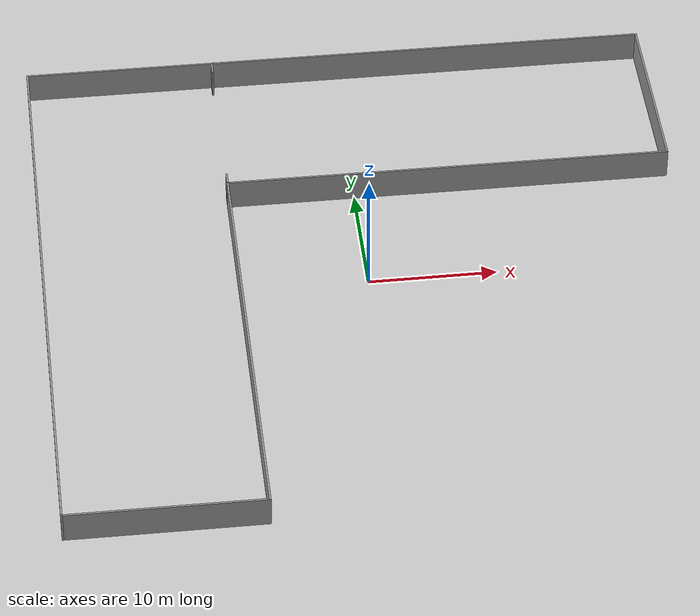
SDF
<sdf version="1.7">
 <world name="default">
  <light name="sun" type="directional">
   <pose>0 0 10 0 -0 0</pose>
   <diffuse>0.8 0.8 0.8 1</diffuse>
   <specular>0.2 0.2 0.2 1</specular>
   <attenuation>
    <range>1000</range>
    <constant>0.9</constant>
    <linear>0.01</linear>
    <quadratic>0.001</quadratic>
   </attenuation>
   <direction>-0.5 0.1 -0.9</direction>
   <spot><inner_angle>0</inner_angle><outer_angle>0</outer_angle><falloff>0</falloff></spot>
  </light>
  <model name="ground_plane">
   <static>1</static>
   <link name="link">
    <collision name="collision">
     <geometry><plane><normal>0 0 1</normal><size>100 100</size></plane></geometry>
     <surface>
      <contact><collide_bitmask>65535</collide_bitmask></contact>
      <friction><ode><mu>100</mu><mu2>50</mu2></ode></friction>
     </surface>
    </collision>
    <visual name="visual">
     <cast_shadows>0</cast_shadows>
     <geometry><plane><normal>0 0 1</normal><size>100 100</size></plane></geometry>
     <material>
      <script><uri>file://media/materials/scripts/gazebo.material</uri><name>Gazebo/Grey</name></script>
     </material>
    </visual>
   </link>
  </model>
  <gravity>0 0 -9.8</gravity>
  <magnetic_field>6e-06 2.3e-05 -4.2e-05</magnetic_field>
  <atmosphere type="adiabatic"/>
  <physics type="ode">
   <max_step_size>0.001</max_step_size>
   <real_time_factor>1</real_time_factor>
   <real_time_update_rate>1000</real_time_update_rate>
  </physics>
  <scene><ambient>0.4 0.4 0.4 1</ambient><background>0.7 0.7 0.7 1</background><shadows>1</shadows></scene>
  <spherical_coordinates>
   <surface_model>EARTH_WGS84</surface_model>
   <latitude_deg>0</latitude_deg>
   <longitude_deg>0</longitude_deg>
   <elevation>0</elevation>
   <heading_deg>0</heading_deg>
  </spherical_coordinates>
  <model name="arena4">
   <pose>-1e-06 0 0 0 -0 0</pose>
   <link name="Wall_31">
    <collision name="Wall_31_Collision">
     <geometry><box><size>50.15 0.15 2.5</size></box></geometry>
     <pose>0 0 1.25 0 -0 0</pose>
    </collision>
    <visual name="Wall_31_Visual">
     <pose>0 0 1.25 0 -0 0</pose>
     <geometry><box><size>50.15 0.15 2.5</size></box></geometry>
     <material>
      <script><uri>file://media/materials/scripts/gazebo.material</uri><name>Gazebo/Grey</name></script>
      <ambient>1 1 1 1</ambient>
     </material>
     <meta><layer>0</layer></meta>
    </visual>
    <pose>-25 0 0 0 -0 1.5708</pose>
   </link>
   <link name="Wall_32">
    <collision name="Wall_32_Collision">
     <geometry><box><size>50.15 0.15 2.5</size></box></geometry>
     <pose>0 0 1.25 0 -0 0</pose>
    </collision>
    <visual name="Wall_32_Visual">
     <pose>0 0 1.25 0 -0 0</pose>
     <geometry><box><size>50.15 0.15 2.5</size></box></geometry>
     <material>
      <script><uri>file://media/materials/scripts/gazebo.material</uri><name>Gazebo/Grey</name></script>
      <ambient>1 1 1 1</ambient>
     </material>
     <meta><layer>0</layer></meta>
    </visual>
    <pose>1e-06 25 0 0 -0 0</pose>
   </link>
   <link name="Wall_33">
    <collision name="Wall_33_Collision">
     <geometry><box><size>15.15 0.15 2.5</size></box></geometry>
     <pose>0 0 1.25 0 -0 0</pose>
    </collision>
    <visual name="Wall_33_Visual">
     <pose>0 0 1.25 0 -0 0</pose>
     <geometry><box><size>15.15 0.15 2.5</size></box></geometry>
     <material>
      <script><uri>file://media/materials/scripts/gazebo.material</uri><name>Gazebo/Grey</name></script>
      <ambient>1 1 1 1</ambient>
     </material>
     <meta><layer>0</layer></meta>
    </visual>
    <pose>25 17.5 0 0 -0 -1.5708</pose>
   </link>
   <link name="Wall_34">
    <collision name="Wall_34_Collision">
     <geometry><box><size>35.15 0.15 2.5</size></box></geometry>
     <pose>0 0 1.25 0 -0 0</pose>
    </collision>
    <visual name="Wall_34_Visual">
     <pose>0 0 1.25 0 -0 0</pose>
     <geometry><box><size>35.15 0.15 2.5</size></box></geometry>
     <material>
      <script><uri>file://media/materials/scripts/gazebo.material</uri><name>Gazebo/Grey</name></script>
      <ambient>1 1 1 1</ambient>
     </material>
     <meta><layer>0</layer></meta>
    </visual>
    <pose>7.5 10 0 0 -0 3.14159</pose>
   </link>
   <link name="Wall_35">
    <collision name="Wall_35_Collision">
     <geometry><box><size>35.15 0.15 2.5</size></box></geometry>
     <pose>0 0 1.25 0 -0 0</pose>
    </collision>
    <visual name="Wall_35_Visual">
     <pose>0 0 1.25 0 -0 0</pose>
     <geometry><box><size>35.15 0.15 2.5</size></box></geometry>
     <material>
      <script><uri>file://media/materials/scripts/gazebo.material</uri><name>Gazebo/Grey</name></script>
      <ambient>1 1 1 1</ambient>
     </material>
     <meta><layer>0</layer></meta>
    </visual>
    <pose>-10 -7.5 0 0 -0 -1.5708</pose>
   </link>
   <link name="Wall_36">
    <collision name="Wall_36_Collision">
     <geometry><box><size>15.15 0.15 2.5</size></box></geometry>
     <pose>0 0 1.25 0 -0 0</pose>
    </collision>
    <visual name="Wall_36_Visual">
     <pose>0 0 1.25 0 -0 0</pose>
     <geometry><box><size>15.15 0.15 2.5</size></box></geometry>
     <material>
      <script><uri>file://media/materials/scripts/gazebo.material</uri><name>Gazebo/Grey</name></script>
      <ambient>1 1 1 1</ambient>
     </material>
     <meta><layer>0</layer></meta>
    </visual>
    <pose>-17.5 -25 0 0 -0 3.14159</pose>
   </link>
   <link name="Wall_38">
    <collision name="Wall_38_Collision">
     <geometry><box><size>1.15 0.15 2.5</size></box></geometry>
     <pose>0 0 1.25 0 -0 0</pose>
    </collision>
    <visual name="Wall_38_Visual">
     <pose>0 0 1.25 0 -0 0</pose>
     <geometry><box><size>1.15 0.15 2.5</size></box></geometry>
     <material>
      <script><uri>file://media/materials/scripts/gazebo.material</uri><name>Gazebo/Grey</name></script>
      <ambient>1 1 1 1</ambient>
     </material>
     <meta><layer>0</layer></meta>
    </visual>
    <pose>-10 10.5 0 0 -0 1.5708</pose>
   </link>
   <link name="Wall_40">
    <collision name="Wall_40_Collision">
     <geometry><box><size>1.15 0.15 2.5</size></box></geometry>
     <pose>0 0 1.25 0 -0 0</pose>
    </collision>
    <visual name="Wall_40_Visual">
     <pose>0 0 1.25 0 -0 0</pose>
     <geometry><box><size>1.15 0.15 2.5</size></box></geometry>
     <material>
      <script><uri>file://media/materials/scripts/gazebo.material</uri><name>Gazebo/Grey</name></script>
      <ambient>1 1 1 1</ambient>
     </material>
     <meta><layer>0</layer></meta>
    </visual>
    <pose>-10 24.5 0 0 -0 -1.5708</pose>
   </link>
   <static>1</static>
  </model>
 </world>
</sdf>
